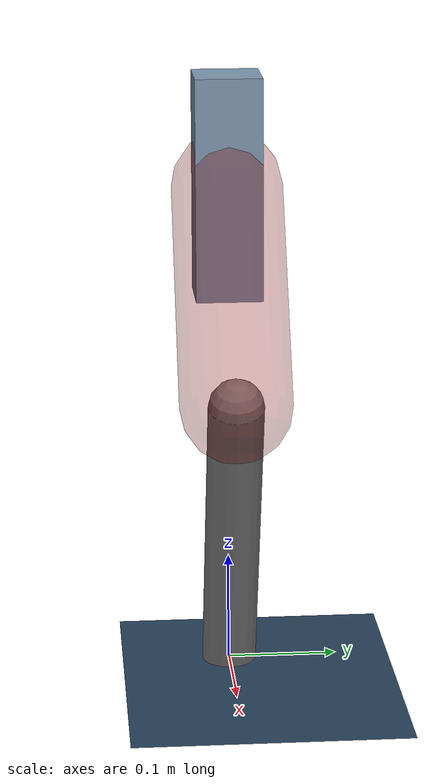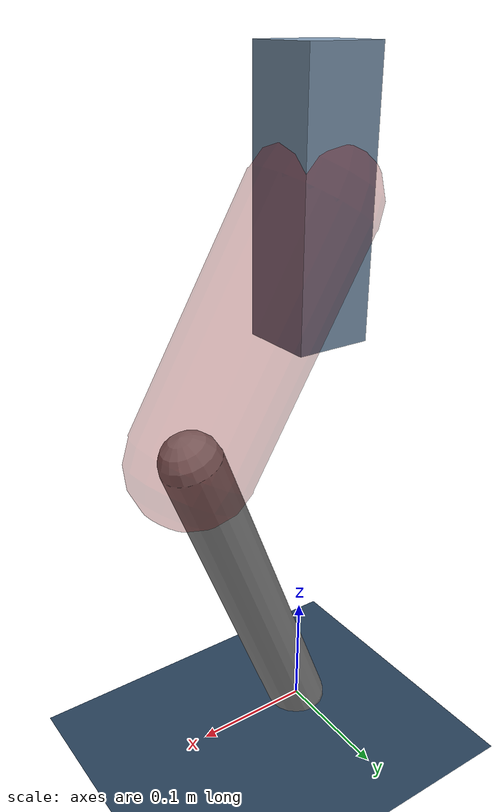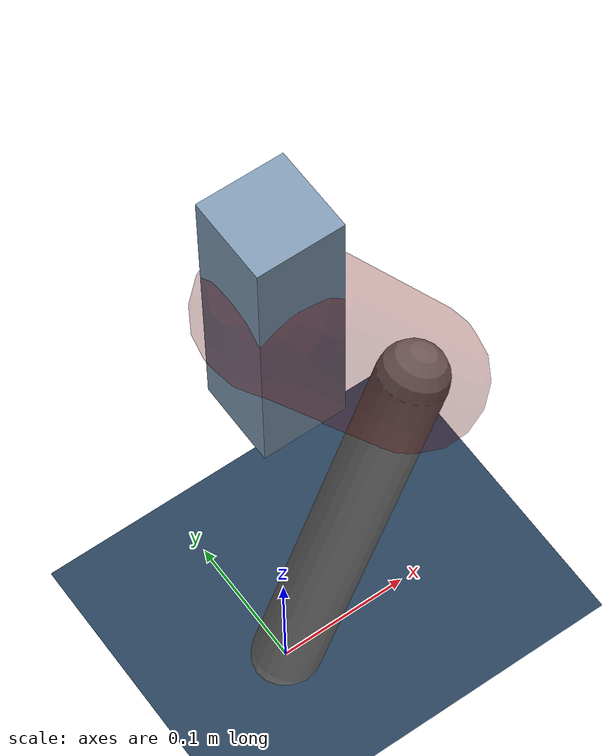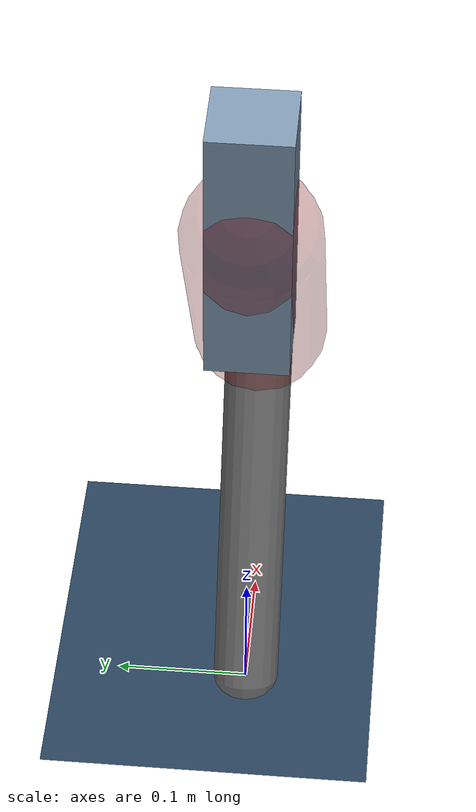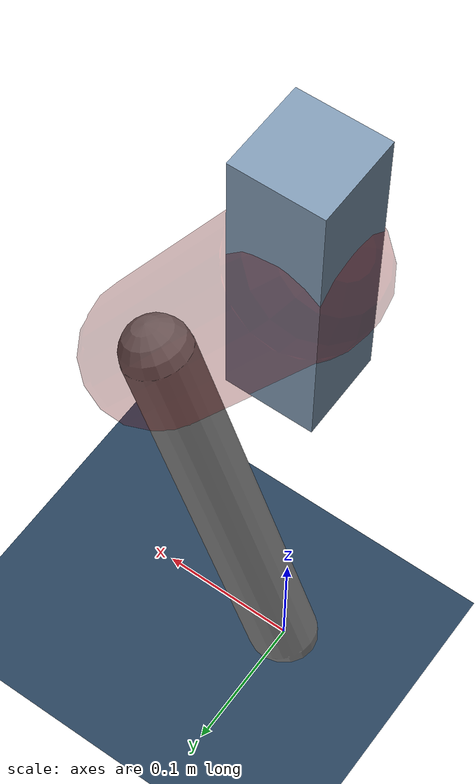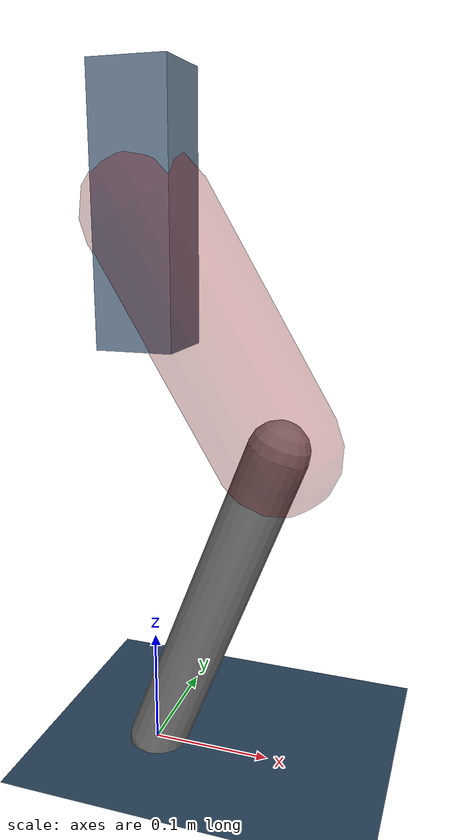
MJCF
<mujoco model="Hopper2D">
	<compiler inertiafromgeom="true" angle="radian" />
	<option timestep="0.001" integrator="implicit" cone="elliptic" solver="Newton" tolerance="1e-10" />

	<default>
		<geom contype="1" conaffinity="1" condim="3" friction="2 0.005 0.0001" solref="0.005 1" />
		<joint limited="true" damping="0.1" />
	</default>

	<asset>
		<texture name="skybox" type="skybox" builtin="gradient" rgb1=".4 .6 .8" rgb2="0 0 0" width="800" height="800" />
		<texture name="grid" type="2d" builtin="checker" rgb1=".1 .2 .3" rgb2=".2 .3 .4" width="300" height="300" mark="edge" markrgb=".2 .3 .4" />
		<material name="ground" texture="grid" texrepeat="1 1" texuniform="true" reflectance="0.1" />
		<material name="leg" rgba="0.5 0.6 0.7 1" />
	</asset>

	<worldbody>

		<geom name="floor" type="plane" size="5 5 0.25" material="ground" />

		<light directional="false" diffuse="0.8 0.8 0.8" specular="0.3 0.3 0.3" pos="0 0 2" dir="0 0 -1" />
		<light mode="targetbodycom" target="base" directional="false" diffuse="0.8 0.8 0.8" specular="0.3 0.3 0.3" pos="0 0 2" dir="0 0 -1" />

		<camera name="fixed" pos="0 -2 1" xyaxes="1 0 0 0 0 1" />
		<camera name="tracking" mode="trackcom" pos="0 -3 1" />

		<body name="root" pos="0 0 0.44935547661110403">
			<joint name="slide_x" type="slide" axis="1 0 0" range="-100 100" />
			<joint name="slide_z" type="slide" axis="0 0 1" range="0 10" />

			<body name="base" pos="0 0 0">
				<geom name="torso" type="box" size="0.03 0.03 0.1" mass="3.5010000000000003" material="leg" />

				<body name="link1" pos="0 0 0" euler="0 1.0326706566448642 0">
					<joint type="hinge" axis="0 -1 0" pos="0 0 0" name="hinge1" limited="true" range="-3.14 3.14" stiffness="0" damping="0.1" />
					<geom name="thigh" type="capsule" fromto="0 0 0 0.20424597191244936 0 0" size="0.05" rgba="0.5 0 0 0.3" mass="0.7402149297811235" />

					<body name="link2" pos="0.20424597191244936 0 0" euler="0 0.9030926066052698 0">
						<joint type="hinge" axis="0 -1 0" pos="0 0 0" name="hinge2" limited="true" range="-3.14 3.14" stiffness="0" damping="0.1" />
						<geom name="shank" type="capsule" fromto="0 0 0 0.29329299556873323 0 0" size="0.025" mass="0.4779343964549866" />

					</body>
				</body>
			</body>
		</body>
	</worldbody>

	<actuator>
		<motor name="torque1" joint="hinge1" ctrlrange="-144.46351183771853 144.46351183771853" ctrllimited="true" gear="1" />
		<motor name="torque2" joint="hinge2" ctrlrange="-59.21605854321358 59.21605854321358" ctrllimited="true" gear="1" />
	</actuator>
</mujoco>
